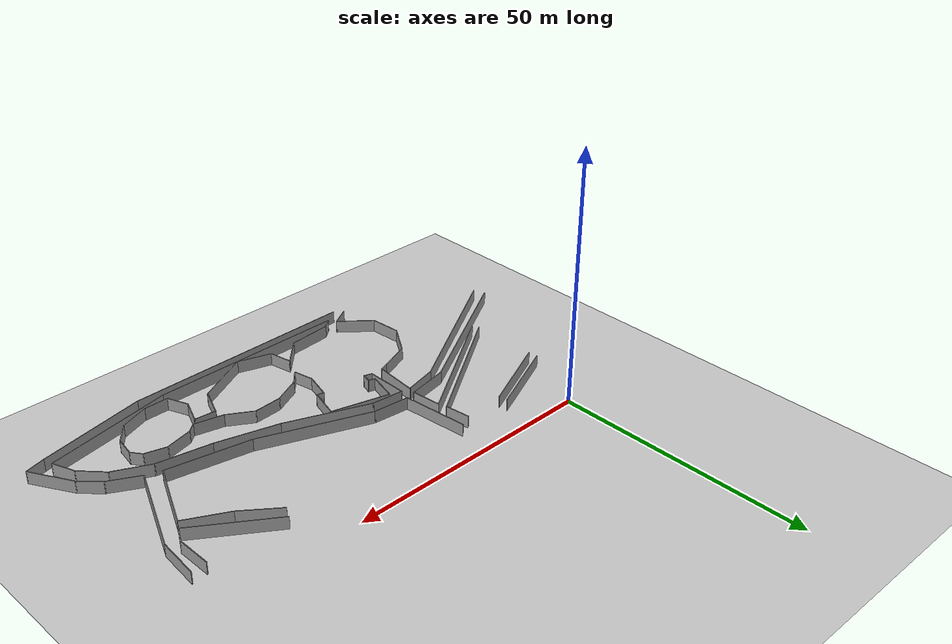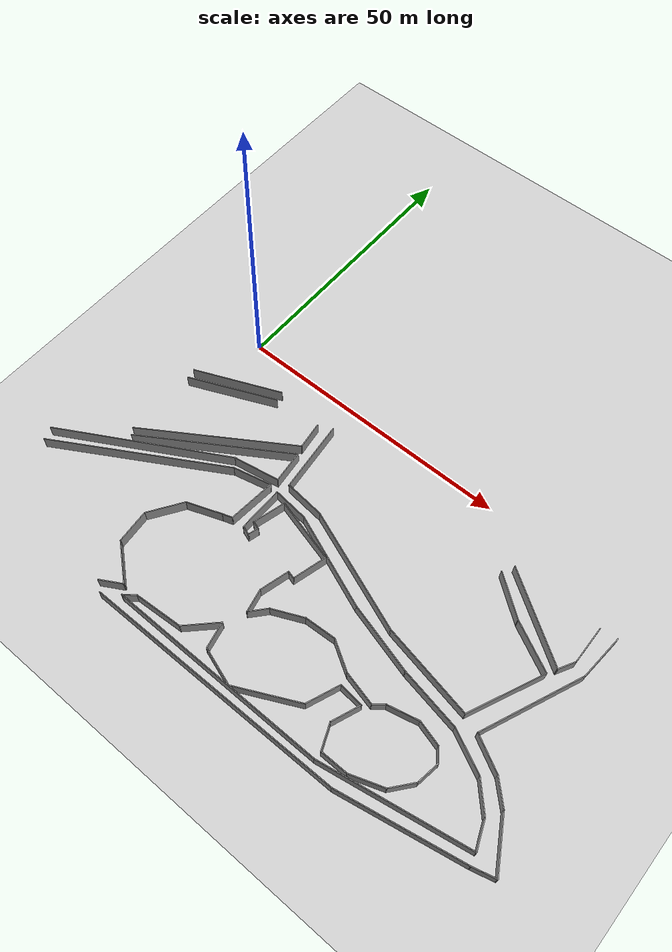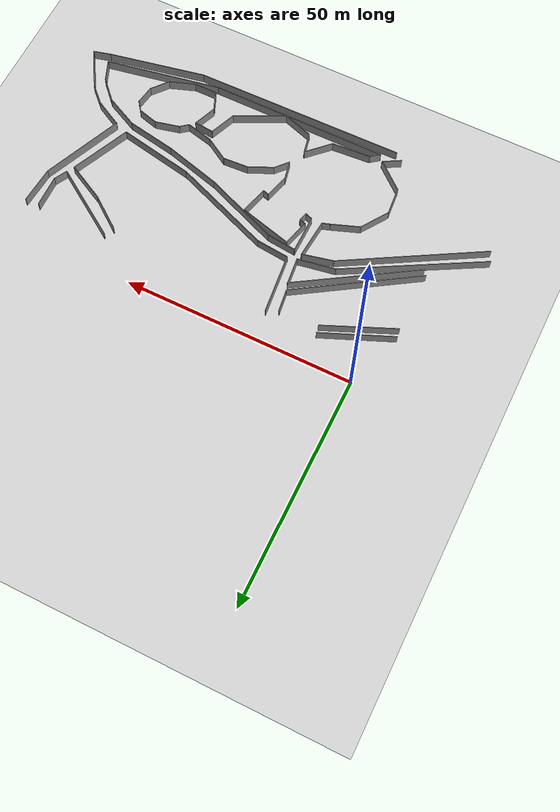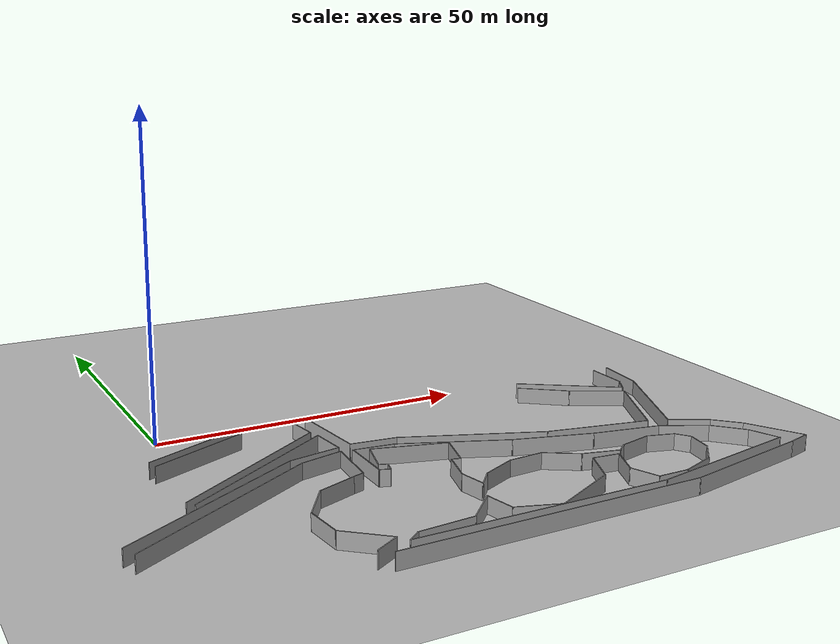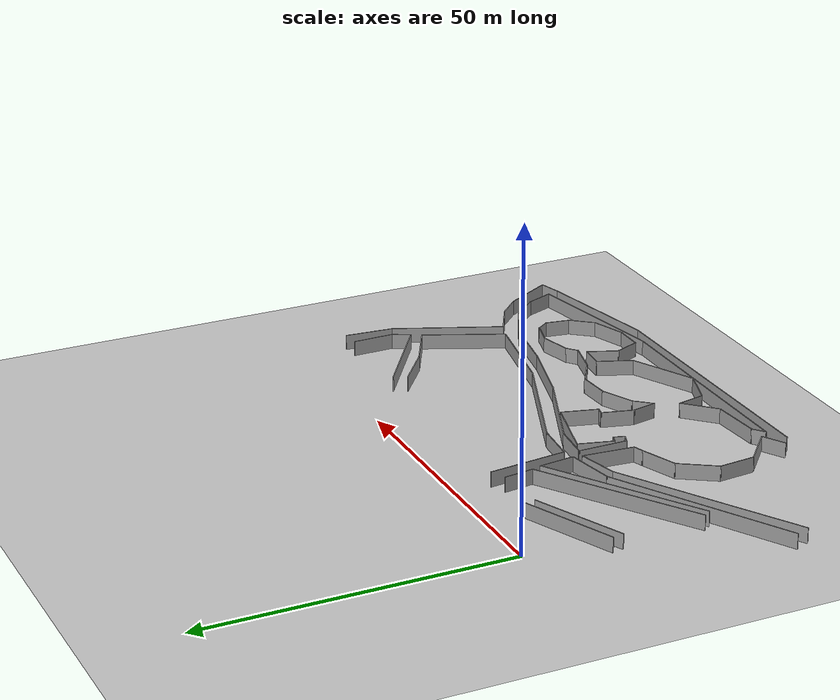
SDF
<sdf version="1.7">
 <world name="default">
  <include><uri>model://sun</uri></include>
  <include><uri>model://ground_plane</uri></include>
  <model name="final_max_v1">
   <pose>-2.52311 0.669104 0 0 -0 0</pose>
   <link name="Wall_12">
    <collision name="Wall_12_Collision">
     <geometry><box><size>4.71285 0.15 2.5</size></box></geometry>
     <pose>0 0 1.25 0 -0 0</pose>
    </collision>
    <visual name="Wall_12_Visual">
     <pose>0 0 1.25 0 -0 0</pose>
     <geometry><box><size>4.71285 0.15 2.5</size></box></geometry>
     <material>
      <script><uri>file://media/materials/scripts/gazebo.material</uri><name>Gazebo/Grey</name></script>
      <ambient>1 1 1 1</ambient>
     </material>
     <meta><layer>0</layer></meta>
    </visual>
    <pose>33.7028 -45.8078 0 0 -0 -1.36194</pose>
   </link>
   <link name="Wall_13">
    <collision name="Wall_13_Collision">
     <geometry><box><size>6.84861 0.15 2.5</size></box></geometry>
     <pose>0 0 1.25 0 -0 0</pose>
    </collision>
    <visual name="Wall_13_Visual">
     <pose>0 0 1.25 0 -0 0</pose>
     <geometry><box><size>6.84861 0.15 2.5</size></box></geometry>
     <material>
      <script><uri>file://media/materials/scripts/gazebo.material</uri><name>Gazebo/Grey</name></script>
      <ambient>1 1 1 1</ambient>
     </material>
     <meta><layer>0</layer></meta>
    </visual>
    <pose>37.3584 -49.0831 0 0 -0 -0.316824</pose>
   </link>
   <link name="Wall_131">
    <collision name="Wall_131_Collision">
     <geometry><box><size>16.551 0.15 2.5</size></box></geometry>
     <pose>0 0 1.25 0 -0 0</pose>
    </collision>
    <visual name="Wall_131_Visual">
     <pose>0 0 1.25 0 -0 0</pose>
     <geometry><box><size>16.551 0.15 2.5</size></box></geometry>
     <material>
      <script><uri>file://media/materials/scripts/gazebo.material</uri><name>Gazebo/Grey</name></script>
      <ambient>1 1 1 1</ambient>
     </material>
     <meta><layer>0</layer></meta>
    </visual>
    <pose>61.4597 -29.6539 0 0 -0 2.9497</pose>
   </link>
   <link name="Wall_132">
    <collision name="Wall_132_Collision">
     <geometry><box><size>22.4626 0.15 2.5</size></box></geometry>
     <pose>0 0 1.25 0 -0 0</pose>
    </collision>
    <visual name="Wall_132_Visual">
     <pose>0 0 1.25 0 -0 0</pose>
     <geometry><box><size>22.4626 0.15 2.5</size></box></geometry>
     <material>
      <script><uri>file://media/materials/scripts/gazebo.material</uri><name>Gazebo/Grey</name></script>
      <ambient>1 1 1 1</ambient>
     </material>
     <meta><layer>0</layer></meta>
    </visual>
    <pose>43.0137 -24.0419 0 0 -0 2.77027</pose>
   </link>
   <link name="Wall_133">
    <collision name="Wall_133_Collision">
     <geometry><box><size>7.27213 0.15 2.5</size></box></geometry>
     <pose>0 0 1.25 0 -0 0</pose>
    </collision>
    <visual name="Wall_133_Visual">
     <pose>0 0 1.25 0 -0 0</pose>
     <geometry><box><size>7.27213 0.15 2.5</size></box></geometry>
     <material>
      <script><uri>file://media/materials/scripts/gazebo.material</uri><name>Gazebo/Grey</name></script>
      <ambient>1 1 1 1</ambient>
     </material>
     <meta><layer>0</layer></meta>
    </visual>
    <pose>29.0757 -19.6259 0 0 -0 3.03807</pose>
   </link>
   <link name="Wall_134">
    <collision name="Wall_134_Collision">
     <geometry><box><size>13.0122 0.15 2.5</size></box></geometry>
     <pose>0 0 1.25 0 -0 0</pose>
    </collision>
    <visual name="Wall_134_Visual">
     <pose>0 0 1.25 0 -0 0</pose>
     <geometry><box><size>13.0122 0.15 2.5</size></box></geometry>
     <material>
      <script><uri>file://media/materials/scripts/gazebo.material</uri><name>Gazebo/Grey</name></script>
      <ambient>1 1 1 1</ambient>
     </material>
     <meta><layer>0</layer></meta>
    </visual>
    <pose>24.8437 -12.8639 0 0 -0 1.67829</pose>
   </link>
   <link name="Wall_138">
    <collision name="Wall_138_Collision">
     <geometry><box><size>8.35659 0.15 2.5</size></box></geometry>
     <pose>0 0 1.25 0 -0 0</pose>
    </collision>
    <visual name="Wall_138_Visual">
     <pose>0 0 1.25 0 -0 0</pose>
     <geometry><box><size>8.35659 0.15 2.5</size></box></geometry>
     <material>
      <script><uri>file://media/materials/scripts/gazebo.material</uri><name>Gazebo/Grey</name></script>
      <ambient>1 1 1 1</ambient>
     </material>
     <meta><layer>0</layer></meta>
    </visual>
    <pose>63.9437 -11.9899 0 0 -0 -0.650227</pose>
   </link>
   <link name="Wall_139">
    <collision name="Wall_139_Collision">
     <geometry><box><size>9.07969 0.15 2.5</size></box></geometry>
     <pose>0 0 1.25 0 -0 0</pose>
    </collision>
    <visual name="Wall_139_Visual">
     <pose>0 0 1.25 0 -0 0</pose>
     <geometry><box><size>9.07969 0.15 2.5</size></box></geometry>
     <material>
      <script><uri>file://media/materials/scripts/gazebo.material</uri><name>Gazebo/Grey</name></script>
      <ambient>1 1 1 1</ambient>
     </material>
     <meta><layer>0</layer></meta>
    </visual>
    <pose>71.1657 -16.5439 0 0 -0 -0.482079</pose>
   </link>
   <link name="Wall_14">
    <collision name="Wall_14_Collision">
     <geometry><box><size>11.6765 0.15 2.5</size></box></geometry>
     <pose>0 0 1.25 0 -0 0</pose>
    </collision>
    <visual name="Wall_14_Visual">
     <pose>0 0 1.25 0 -0 0</pose>
     <geometry><box><size>11.6765 0.15 2.5</size></box></geometry>
     <material>
      <script><uri>file://media/materials/scripts/gazebo.material</uri><name>Gazebo/Grey</name></script>
      <ambient>1 1 1 1</ambient>
     </material>
     <meta><layer>0</layer></meta>
    </visual>
    <pose>45.7063 -47.5701 0 0 -0 0.459599</pose>
   </link>
   <link name="Wall_140">
    <collision name="Wall_140_Collision">
     <geometry><box><size>13.9469 0.15 2.5</size></box></geometry>
     <pose>0 0 1.25 0 -0 0</pose>
    </collision>
    <visual name="Wall_140_Visual">
     <pose>0 0 1.25 0 -0 0</pose>
     <geometry><box><size>13.9469 0.15 2.5</size></box></geometry>
     <material>
      <script><uri>file://media/materials/scripts/gazebo.material</uri><name>Gazebo/Grey</name></script>
      <ambient>1 1 1 1</ambient>
     </material>
     <meta><layer>0</layer></meta>
    </visual>
    <pose>72.3157 -24.9159 0 0 -0 -1.9897</pose>
   </link>
   <link name="Wall_15">
    <collision name="Wall_15_Collision">
     <geometry><box><size>6.09874 0.15 2.5</size></box></geometry>
     <pose>0 0 1.25 0 -0 0</pose>
    </collision>
    <visual name="Wall_15_Visual">
     <pose>0 0 1.25 0 -0 0</pose>
     <geometry><box><size>6.09874 0.15 2.5</size></box></geometry>
     <material>
      <script><uri>file://media/materials/scripts/gazebo.material</uri><name>Gazebo/Grey</name></script>
      <ambient>1 1 1 1</ambient>
     </material>
     <meta><layer>0</layer></meta>
    </visual>
    <pose>51.9671 -42.2484 0 0 -0 1.19355</pose>
   </link>
   <link name="Wall_16">
    <collision name="Wall_16_Collision">
     <geometry><box><size>4.34473 0.15 2.5</size></box></geometry>
     <pose>0 0 1.25 0 -0 0</pose>
    </collision>
    <visual name="Wall_16_Visual">
     <pose>0 0 1.25 0 -0 0</pose>
     <geometry><box><size>4.34473 0.15 2.5</size></box></geometry>
     <material>
      <script><uri>file://media/materials/scripts/gazebo.material</uri><name>Gazebo/Grey</name></script>
      <ambient>1 1 1 1</ambient>
     </material>
     <meta><layer>0</layer></meta>
    </visual>
    <pose>55.1497 -39.6918 0 0 -0 -0.099669</pose>
   </link>
   <link name="Wall_17">
    <collision name="Wall_17_Collision">
     <geometry><box><size>5.3044 0.15 2.5</size></box></geometry>
     <pose>0 0 1.25 0 -0 0</pose>
    </collision>
    <visual name="Wall_17_Visual">
     <pose>0 0 1.25 0 -0 0</pose>
     <geometry><box><size>5.3044 0.15 2.5</size></box></geometry>
     <material>
      <script><uri>file://media/materials/scripts/gazebo.material</uri><name>Gazebo/Grey</name></script>
      <ambient>1 1 1 1</ambient>
     </material>
     <meta><layer>0</layer></meta>
    </visual>
    <pose>56.2976 -42.3005 0 0 -0 -1.94378</pose>
   </link>
   <link name="Wall_18">
    <collision name="Wall_18_Collision">
     <geometry><box><size>4.54873 0.15 2.5</size></box></geometry>
     <pose>0 0 1.25 0 -0 0</pose>
    </collision>
    <visual name="Wall_18_Visual">
     <pose>0 0 1.25 0 -0 0</pose>
     <geometry><box><size>4.54873 0.15 2.5</size></box></geometry>
     <material>
      <script><uri>file://media/materials/scripts/gazebo.material</uri><name>Gazebo/Grey</name></script>
      <ambient>1 1 1 1</ambient>
     </material>
     <meta><layer>0</layer></meta>
    </visual>
    <pose>56.1932 -46.7353 0 0 -0 -1.18148</pose>
   </link>
   <link name="Wall_21">
    <collision name="Wall_21_Collision">
     <geometry><box><size>4.95 0.15 2.5</size></box></geometry>
     <pose>0 0 1.25 0 -0 0</pose>
    </collision>
    <visual name="Wall_21_Visual">
     <pose>0 0 1.25 0 -0 0</pose>
     <geometry><box><size>4.95 0.15 2.5</size></box></geometry>
     <material>
      <script><uri>file://media/materials/scripts/gazebo.material</uri><name>Gazebo/Grey</name></script>
      <ambient>1 1 1 1</ambient>
     </material>
     <meta><layer>0</layer></meta>
    </visual>
    <pose>59.428 -48.7701 0 0 -0 0</pose>
   </link>
   <link name="Wall_22">
    <collision name="Wall_22_Collision">
     <geometry><box><size>6.02507 0.15 2.5</size></box></geometry>
     <pose>0 0 1.25 0 -0 0</pose>
    </collision>
    <visual name="Wall_22_Visual">
     <pose>0 0 1.25 0 -0 0</pose>
     <geometry><box><size>6.02507 0.15 2.5</size></box></geometry>
     <material>
      <script><uri>file://media/materials/scripts/gazebo.material</uri><name>Gazebo/Grey</name></script>
      <ambient>1 1 1 1</ambient>
     </material>
     <meta><layer>0</layer></meta>
    </visual>
    <pose>64.5932 -47.7788 0 0 -0 0.344219</pose>
   </link>
   <link name="Wall_23">
    <collision name="Wall_23_Collision">
     <geometry><box><size>4.59918 0.15 2.5</size></box></geometry>
     <pose>0 0 1.25 0 -0 0</pose>
    </collision>
    <visual name="Wall_23_Visual">
     <pose>0 0 1.25 0 -0 0</pose>
     <geometry><box><size>4.59918 0.15 2.5</size></box></geometry>
     <material>
      <script><uri>file://media/materials/scripts/gazebo.material</uri><name>Gazebo/Grey</name></script>
      <ambient>1 1 1 1</ambient>
     </material>
     <meta><layer>0</layer></meta>
    </visual>
    <pose>68.7671 -45.0658 0 0 -0 0.885067</pose>
   </link>
   <link name="Wall_24">
    <collision name="Wall_24_Collision">
     <geometry><box><size>4.16434 0.15 2.5</size></box></geometry>
     <pose>0 0 1.25 0 -0 0</pose>
    </collision>
    <visual name="Wall_24_Visual">
     <pose>0 0 1.25 0 -0 0</pose>
     <geometry><box><size>4.16434 0.15 2.5</size></box></geometry>
     <material>
      <script><uri>file://media/materials/scripts/gazebo.material</uri><name>Gazebo/Grey</name></script>
      <ambient>1 1 1 1</ambient>
     </material>
     <meta><layer>0</layer></meta>
    </visual>
    <pose>70.4889 -41.3614 0 0 -0 1.41419</pose>
   </link>
   <link name="Wall_25">
    <collision name="Wall_25_Collision">
     <geometry><box><size>2.6127 0.15 2.5</size></box></geometry>
     <pose>0 0 1.25 0 -0 0</pose>
    </collision>
    <visual name="Wall_25_Visual">
     <pose>0 0 1.25 0 -0 0</pose>
     <geometry><box><size>2.6127 0.15 2.5</size></box></geometry>
     <material>
      <script><uri>file://media/materials/scripts/gazebo.material</uri><name>Gazebo/Grey</name></script>
      <ambient>1 1 1 1</ambient>
     </material>
     <meta><layer>0</layer></meta>
    </visual>
    <pose>70.0715 -38.3875 0 0 -0 2.20582</pose>
   </link>
   <link name="Wall_26">
    <collision name="Wall_26_Collision">
     <geometry><box><size>4.47886 0.15 2.5</size></box></geometry>
     <pose>0 0 1.25 0 -0 0</pose>
    </collision>
    <visual name="Wall_26_Visual">
     <pose>0 0 1.25 0 -0 0</pose>
     <geometry><box><size>4.47886 0.15 2.5</size></box></geometry>
     <material>
      <script><uri>file://media/materials/scripts/gazebo.material</uri><name>Gazebo/Grey</name></script>
      <ambient>1 1 1 1</ambient>
     </material>
     <meta><layer>0</layer></meta>
    </visual>
    <pose>67.2541 -36.8223 0 0 -0 2.87323</pose>
   </link>
   <link name="Wall_27">
    <collision name="Wall_27_Collision">
     <geometry><box><size>5.51555 0.15 2.5</size></box></geometry>
     <pose>0 0 1.25 0 -0 0</pose>
    </collision>
    <visual name="Wall_27_Visual">
     <pose>0 0 1.25 0 -0 0</pose>
     <geometry><box><size>5.51555 0.15 2.5</size></box></geometry>
     <material>
      <script><uri>file://media/materials/scripts/gazebo.material</uri><name>Gazebo/Grey</name></script>
      <ambient>1 1 1 1</ambient>
     </material>
     <meta><layer>0</layer></meta>
    </visual>
    <pose>62.5584 -36.8745 0 0 -0 -2.90605</pose>
   </link>
   <link name="Wall_28">
    <collision name="Wall_28_Collision">
     <geometry><box><size>2.30119 0.15 2.5</size></box></geometry>
     <pose>0 0 1.25 0 -0 0</pose>
    </collision>
    <visual name="Wall_28_Visual">
     <pose>0 0 1.25 0 -0 0</pose>
     <geometry><box><size>2.30119 0.15 2.5</size></box></geometry>
     <material>
      <script><uri>file://media/materials/scripts/gazebo.material</uri><name>Gazebo/Grey</name></script>
      <ambient>1 1 1 1</ambient>
     </material>
     <meta><layer>0</layer></meta>
    </visual>
    <pose>59.1149 -38.1788 0 0 -0 -2.45928</pose>
   </link>
   <link name="Wall_29">
    <collision name="Wall_29_Collision">
     <geometry><box><size>5.94577 0.15 2.5</size></box></geometry>
     <pose>0 0 1.25 0 -0 0</pose>
    </collision>
    <visual name="Wall_29_Visual">
     <pose>0 0 1.25 0 -0 0</pose>
     <geometry><box><size>5.94577 0.15 2.5</size></box></geometry>
     <material>
      <script><uri>file://media/materials/scripts/gazebo.material</uri><name>Gazebo/Grey</name></script>
      <ambient>1 1 1 1</ambient>
     </material>
     <meta><layer>0</layer></meta>
    </visual>
    <pose>55.4628 -38.1788 0 0 -0 2.90535</pose>
   </link>
   <link name="Wall_302">
    <collision name="Wall_302_Collision">
     <geometry><box><size>17.3014 0.15 2.5</size></box></geometry>
     <pose>0 0 1.25 0 -0 0</pose>
    </collision>
    <visual name="Wall_302_Visual">
     <pose>0 0 1.25 0 -0 0</pose>
     <geometry><box><size>17.3014 0.15 2.5</size></box></geometry>
     <material>
      <script><uri>file://media/materials/scripts/gazebo.material</uri><name>Gazebo/Grey</name></script>
      <ambient>1 1 1 1</ambient>
     </material>
     <meta><layer>0</layer></meta>
    </visual>
    <pose>68.8817 -12.2483 0 0 -0 -0.59024</pose>
   </link>
   <link name="Wall_303">
    <collision name="Wall_303_Collision">
     <geometry><box><size>3.26378 0.15 2.5</size></box></geometry>
     <pose>0 0 1.25 0 -0 0</pose>
    </collision>
    <visual name="Wall_303_Visual">
     <pose>0 0 1.25 0 -0 0</pose>
     <geometry><box><size>3.26378 0.15 2.5</size></box></geometry>
     <material>
      <script><uri>file://media/materials/scripts/gazebo.material</uri><name>Gazebo/Grey</name></script>
      <ambient>1 1 1 1</ambient>
     </material>
     <meta><layer>0</layer></meta>
    </visual>
    <pose>76.7485 -15.6525 0 0 -0 1.07401</pose>
   </link>
   <link name="Wall_304">
    <collision name="Wall_304_Collision">
     <geometry><box><size>6.84577 0.15 2.5</size></box></geometry>
     <pose>0 0 1.25 0 -0 0</pose>
    </collision>
    <visual name="Wall_304_Visual">
     <pose>0 0 1.25 0 -0 0</pose>
     <geometry><box><size>6.84577 0.15 2.5</size></box></geometry>
     <material>
      <script><uri>file://media/materials/scripts/gazebo.material</uri><name>Gazebo/Grey</name></script>
      <ambient>1 1 1 1</ambient>
     </material>
     <meta><layer>0</layer></meta>
    </visual>
    <pose>77.4382 -10.9364 0 0 -0 1.58642</pose>
   </link>
   <link name="Wall_31">
    <collision name="Wall_31_Collision">
     <geometry><box><size>5.7693 0.15 2.5</size></box></geometry>
     <pose>0 0 1.25 0 -0 0</pose>
    </collision>
    <visual name="Wall_31_Visual">
     <pose>0 0 1.25 0 -0 0</pose>
     <geometry><box><size>5.7693 0.15 2.5</size></box></geometry>
     <material>
      <script><uri>file://media/materials/scripts/gazebo.material</uri><name>Gazebo/Grey</name></script>
      <ambient>1 1 1 1</ambient>
     </material>
     <meta><layer>0</layer></meta>
    </visual>
    <pose>50.2454 -36.0397 0 0 -0 2.5948</pose>
   </link>
   <link name="Wall_32">
    <collision name="Wall_32_Collision">
     <geometry><box><size>5.58511 0.15 2.5</size></box></geometry>
     <pose>0 0 1.25 0 -0 0</pose>
    </collision>
    <visual name="Wall_32_Visual">
     <pose>0 0 1.25 0 -0 0</pose>
     <geometry><box><size>5.58511 0.15 2.5</size></box></geometry>
     <material>
      <script><uri>file://media/materials/scripts/gazebo.material</uri><name>Gazebo/Grey</name></script>
      <ambient>1 1 1 1</ambient>
     </material>
     <meta><layer>0</layer></meta>
    </visual>
    <pose>45.1323 -34.7353 0 0 -0 -3.08396</pose>
   </link>
   <link name="Wall_33">
    <collision name="Wall_33_Collision">
     <geometry><box><size>5.89292 0.15 2.5</size></box></geometry>
     <pose>0 0 1.25 0 -0 0</pose>
    </collision>
    <visual name="Wall_33_Visual">
     <pose>0 0 1.25 0 -0 0</pose>
     <geometry><box><size>5.89292 0.15 2.5</size></box></geometry>
     <material>
      <script><uri>file://media/materials/scripts/gazebo.material</uri><name>Gazebo/Grey</name></script>
      <ambient>1 1 1 1</ambient>
     </material>
     <meta><layer>0</layer></meta>
    </visual>
    <pose>39.8106 -36.0918 0 0 -0 -2.71045</pose>
   </link>
   <link name="Wall_34">
    <collision name="Wall_34_Collision">
     <geometry><box><size>3.62495 0.15 2.5</size></box></geometry>
     <pose>0 0 1.25 0 -0 0</pose>
    </collision>
    <visual name="Wall_34_Visual">
     <pose>0 0 1.25 0 -0 0</pose>
     <geometry><box><size>3.62495 0.15 2.5</size></box></geometry>
     <material>
      <script><uri>file://media/materials/scripts/gazebo.material</uri><name>Gazebo/Grey</name></script>
      <ambient>1 1 1 1</ambient>
     </material>
     <meta><layer>0</layer></meta>
    </visual>
    <pose>36.0541 -38.5962 0 0 -0 -2.29245</pose>
   </link>
   <link name="Wall_35">
    <collision name="Wall_35_Collision">
     <geometry><box><size>4.20214 0.15 2.5</size></box></geometry>
     <pose>0 0 1.25 0 -0 0</pose>
    </collision>
    <visual name="Wall_35_Visual">
     <pose>0 0 1.25 0 -0 0</pose>
     <geometry><box><size>4.20214 0.15 2.5</size></box></geometry>
     <material>
      <script><uri>file://media/materials/scripts/gazebo.material</uri><name>Gazebo/Grey</name></script>
      <ambient>1 1 1 1</ambient>
     </material>
     <meta><layer>0</layer></meta>
    </visual>
    <pose>34.4889 -37.9179 0 0 -0 1.77829</pose>
   </link>
   <link name="Wall_36">
    <collision name="Wall_36_Collision">
     <geometry><box><size>5.43993 0.15 2.5</size></box></geometry>
     <pose>0 0 1.25 0 -0 0</pose>
    </collision>
    <visual name="Wall_36_Visual">
     <pose>0 0 1.25 0 -0 0</pose>
     <geometry><box><size>5.43993 0.15 2.5</size></box></geometry>
     <material>
      <script><uri>file://media/materials/scripts/gazebo.material</uri><name>Gazebo/Grey</name></script>
      <ambient>1 1 1 1</ambient>
     </material>
     <meta><layer>0</layer></meta>
    </visual>
    <pose>34.7497 -33.3788 0 0 -0 1.31147</pose>
   </link>
   <link name="Wall_37">
    <collision name="Wall_37_Collision">
     <geometry><box><size>1.5 0.15 2.5</size></box></geometry>
     <pose>0 0 1.25 0 -0 0</pose>
    </collision>
    <visual name="Wall_37_Visual">
     <pose>0 0 1.25 0 -0 0</pose>
     <geometry><box><size>1.5 0.15 2.5</size></box></geometry>
     <material>
      <script><uri>file://media/materials/scripts/gazebo.material</uri><name>Gazebo/Grey</name></script>
      <ambient>1 1 1 1</ambient>
     </material>
     <meta><layer>0</layer></meta>
    </visual>
    <pose>36.08 -30.997 0 0 -0 -0.261799</pose>
   </link>
   <link name="Wall_38">
    <collision name="Wall_38_Collision">
     <geometry><box><size>6.25 0.15 2.5</size></box></geometry>
     <pose>0 0 1.25 0 -0 0</pose>
    </collision>
    <visual name="Wall_38_Visual">
     <pose>0 0 1.25 0 -0 0</pose>
     <geometry><box><size>6.25 0.15 2.5</size></box></geometry>
     <material>
      <script><uri>file://media/materials/scripts/gazebo.material</uri><name>Gazebo/Grey</name></script>
      <ambient>1 1 1 1</ambient>
     </material>
     <meta><layer>0</layer></meta>
    </visual>
    <pose>37.5214 -28.2256 0 0 -0 1.309</pose>
   </link>
   <link name="Wall_39">
    <collision name="Wall_39_Collision">
     <geometry><box><size>11.75 0.15 2.5</size></box></geometry>
     <pose>0 0 1.25 0 -0 0</pose>
    </collision>
    <visual name="Wall_39_Visual">
     <pose>0 0 1.25 0 -0 0</pose>
     <geometry><box><size>11.75 0.15 2.5</size></box></geometry>
     <material>
      <script><uri>file://media/materials/scripts/gazebo.material</uri><name>Gazebo/Grey</name></script>
      <ambient>1 1 1 1</ambient>
     </material>
     <meta><layer>0</layer></meta>
    </visual>
    <pose>32.7084 -23.7784 0 0 -0 2.87979</pose>
   </link>
   <link name="Wall_40">
    <collision name="Wall_40_Collision">
     <geometry><box><size>6 0.15 2.5</size></box></geometry>
     <pose>0 0 1.25 0 -0 0</pose>
    </collision>
    <visual name="Wall_40_Visual">
     <pose>0 0 1.25 0 -0 0</pose>
     <geometry><box><size>6 0.15 2.5</size></box></geometry>
     <material>
      <script><uri>file://media/materials/scripts/gazebo.material</uri><name>Gazebo/Grey</name></script>
      <ambient>1 1 1 1</ambient>
     </material>
     <meta><layer>0</layer></meta>
    </visual>
    <pose>26.349 -25.1026 0 0 -0 -1.8326</pose>
   </link>
   <link name="Wall_41">
    <collision name="Wall_41_Collision">
     <geometry><box><size>1.48764 0.15 2.5</size></box></geometry>
     <pose>0 0 1.25 0 -0 0</pose>
    </collision>
    <visual name="Wall_41_Visual">
     <pose>0 0 1.25 0 -0 0</pose>
     <geometry><box><size>1.48764 0.15 2.5</size></box></geometry>
     <material>
      <script><uri>file://media/materials/scripts/gazebo.material</uri><name>Gazebo/Grey</name></script>
      <ambient>1 1 1 1</ambient>
     </material>
     <meta><layer>0</layer></meta>
    </visual>
    <pose>26.2317 -28.1229 0 0 -0 -0.295878</pose>
   </link>
   <link name="Wall_42">
    <collision name="Wall_42_Collision">
     <geometry><box><size>2 0.15 2.5</size></box></geometry>
     <pose>0 0 1.25 0 -0 0</pose>
    </collision>
    <visual name="Wall_42_Visual">
     <pose>0 0 1.25 0 -0 0</pose>
     <geometry><box><size>2 0.15 2.5</size></box></geometry>
     <material>
      <script><uri>file://media/materials/scripts/gazebo.material</uri><name>Gazebo/Grey</name></script>
      <ambient>1 1 1 1</ambient>
     </material>
     <meta><layer>0</layer></meta>
    </visual>
    <pose>26.6321 -29.2114 0 0 -0 -1.8326</pose>
   </link>
   <link name="Wall_43">
    <collision name="Wall_43_Collision">
     <geometry><box><size>1.74606 0.15 2.5</size></box></geometry>
     <pose>0 0 1.25 0 -0 0</pose>
    </collision>
    <visual name="Wall_43_Visual">
     <pose>0 0 1.25 0 -0 0</pose>
     <geometry><box><size>1.74606 0.15 2.5</size></box></geometry>
     <material>
      <script><uri>file://media/materials/scripts/gazebo.material</uri><name>Gazebo/Grey</name></script>
      <ambient>1 1 1 1</ambient>
     </material>
     <meta><layer>0</layer></meta>
    </visual>
    <pose>25.6408 -29.8375 0 0 -0 2.79991</pose>
   </link>
   <link name="Wall_44">
    <collision name="Wall_44_Collision">
     <geometry><box><size>8.25 0.15 2.5</size></box></geometry>
     <pose>0 0 1.25 0 -0 0</pose>
    </collision>
    <visual name="Wall_44_Visual">
     <pose>0 0 1.25 0 -0 0</pose>
     <geometry><box><size>8.25 0.15 2.5</size></box></geometry>
     <material>
      <script><uri>file://media/materials/scripts/gazebo.material</uri><name>Gazebo/Grey</name></script>
      <ambient>1 1 1 1</ambient>
     </material>
     <meta><layer>0</layer></meta>
    </visual>
    <pose>24.8889 -25.5201 0 0 -0 1.5708</pose>
   </link>
   <link name="Wall_45">
    <collision name="Wall_45_Collision">
     <geometry><box><size>6.45508 0.15 2.5</size></box></geometry>
     <pose>0 0 1.25 0 -0 0</pose>
    </collision>
    <visual name="Wall_45_Visual">
     <pose>0 0 1.25 0 -0 0</pose>
     <geometry><box><size>6.45508 0.15 2.5</size></box></geometry>
     <material>
      <script><uri>file://media/materials/scripts/gazebo.material</uri><name>Gazebo/Grey</name></script>
      <ambient>1 1 1 1</ambient>
     </material>
     <meta><layer>0</layer></meta>
    </visual>
    <pose>28.0239 -21.8018 0 0 -0 -0.105418</pose>
   </link>
   <link name="Wall_46">
    <collision name="Wall_46_Collision">
     <geometry><box><size>17.2425 0.15 2.5</size></box></geometry>
     <pose>0 0 1.25 0 -0 0</pose>
    </collision>
    <visual name="Wall_46_Visual">
     <pose>0 0 1.25 0 -0 0</pose>
     <geometry><box><size>17.2425 0.15 2.5</size></box></geometry>
     <material>
      <script><uri>file://media/materials/scripts/gazebo.material</uri><name>Gazebo/Grey</name></script>
      <ambient>1 1 1 1</ambient>
     </material>
     <meta><layer>0</layer></meta>
    </visual>
    <pose>39.0939 -25.3075 0 0 -0 -0.380506</pose>
   </link>
   <link name="Wall_47">
    <collision name="Wall_47_Collision">
     <geometry><box><size>12.6045 0.15 2.5</size></box></geometry>
     <pose>0 0 1.25 0 -0 0</pose>
    </collision>
    <visual name="Wall_47_Visual">
     <pose>0 0 1.25 0 -0 0</pose>
     <geometry><box><size>12.6045 0.15 2.5</size></box></geometry>
     <material>
      <script><uri>file://media/materials/scripts/gazebo.material</uri><name>Gazebo/Grey</name></script>
      <ambient>1 1 1 1</ambient>
     </material>
     <meta><layer>0</layer></meta>
    </visual>
    <pose>53.0319 -30.1375 0 0 -0 -0.269167</pose>
   </link>
   <link name="Wall_48">
    <collision name="Wall_48_Collision">
     <geometry><box><size>10.8145 0.15 2.5</size></box></geometry>
     <pose>0 0 1.25 0 -0 0</pose>
    </collision>
    <visual name="Wall_48_Visual">
     <pose>0 0 1.25 0 -0 0</pose>
     <geometry><box><size>10.8145 0.15 2.5</size></box></geometry>
     <material>
      <script><uri>file://media/materials/scripts/gazebo.material</uri><name>Gazebo/Grey</name></script>
      <ambient>1 1 1 1</ambient>
     </material>
     <meta><layer>0</layer></meta>
    </visual>
    <pose>64.2789 -32.7595 0 0 -0 -0.182168</pose>
   </link>
   <link name="Wall_49">
    <collision name="Wall_49_Collision">
     <geometry><box><size>7.67954 0.15 2.5</size></box></geometry>
     <pose>0 0 1.25 0 -0 0</pose>
    </collision>
    <visual name="Wall_49_Visual">
     <pose>0 0 1.25 0 -0 0</pose>
     <geometry><box><size>7.67954 0.15 2.5</size></box></geometry>
     <material>
      <script><uri>file://media/materials/scripts/gazebo.material</uri><name>Gazebo/Grey</name></script>
      <ambient>1 1 1 1</ambient>
     </material>
     <meta><layer>0</layer></meta>
    </visual>
    <pose>72.9039 -35.3815 0 0 -0 -0.455451</pose>
   </link>
   <link name="Wall_498">
    <collision name="Wall_498_Collision">
     <geometry><box><size>28.1608 0.15 2.5</size></box></geometry>
     <pose>0 0 1.25 0 -0 0</pose>
    </collision>
    <visual name="Wall_498_Visual">
     <pose>0 0 1.25 0 -0 0</pose>
     <geometry><box><size>28.1608 0.15 2.5</size></box></geometry>
     <material>
      <script><uri>file://media/materials/scripts/gazebo.material</uri><name>Gazebo/Grey</name></script>
      <ambient>1 1 1 1</ambient>
     </material>
     <meta><layer>0</layer></meta>
    </visual>
    <pose>11.0228 -21.4678 0 0 -0 0.566245</pose>
   </link>
   <link name="Wall_50">
    <collision name="Wall_50_Collision">
     <geometry><box><size>5.81305 0.15 2.5</size></box></geometry>
     <pose>0 0 1.25 0 -0 0</pose>
    </collision>
    <visual name="Wall_50_Visual">
     <pose>0 0 1.25 0 -0 0</pose>
     <geometry><box><size>5.81305 0.15 2.5</size></box></geometry>
     <material>
      <script><uri>file://media/materials/scripts/gazebo.material</uri><name>Gazebo/Grey</name></script>
      <ambient>1 1 1 1</ambient>
     </material>
     <meta><layer>0</layer></meta>
    </visual>
    <pose>78.2169 -39.1075 0 0 -0 -0.819867</pose>
   </link>
   <link name="Wall_503">
    <collision name="Wall_503_Collision">
     <geometry><box><size>31.8278 0.15 2.5</size></box></geometry>
     <pose>0 0 1.25 0 -0 0</pose>
    </collision>
    <visual name="Wall_503_Visual">
     <pose>0 0 1.25 0 -0 0</pose>
     <geometry><box><size>31.8278 0.15 2.5</size></box></geometry>
     <material>
      <script><uri>file://media/materials/scripts/gazebo.material</uri><name>Gazebo/Grey</name></script>
      <ambient>1 1 1 1</ambient>
     </material>
     <meta><layer>0</layer></meta>
    </visual>
    <pose>1.59172 -28.9196 0 0 -0 0.51392</pose>
   </link>
   <link name="Wall_505">
    <collision name="Wall_505_Collision">
     <geometry><box><size>8.37199 0.15 2.5</size></box></geometry>
     <pose>0 0 1.25 0 -0 0</pose>
    </collision>
    <visual name="Wall_505_Visual">
     <pose>0 0 1.25 0 -0 0</pose>
     <geometry><box><size>8.37199 0.15 2.5</size></box></geometry>
     <material>
      <script><uri>file://media/materials/scripts/gazebo.material</uri><name>Gazebo/Grey</name></script>
      <ambient>1 1 1 1</ambient>
     </material>
     <meta><layer>0</layer></meta>
    </visual>
    <pose>19.4335 -20.4214 0 0 -0 0.174045</pose>
   </link>
   <link name="Wall_506">
    <collision name="Wall_506_Collision">
     <geometry><box><size>5.94059 0.15 2.5</size></box></geometry>
     <pose>0 0 1.25 0 -0 0</pose>
    </collision>
    <visual name="Wall_506_Visual">
     <pose>0 0 1.25 0 -0 0</pose>
     <geometry><box><size>5.94059 0.15 2.5</size></box></geometry>
     <material>
      <script><uri>file://media/materials/scripts/gazebo.material</uri><name>Gazebo/Grey</name></script>
      <ambient>1 1 1 1</ambient>
     </material>
     <meta><layer>0</layer></meta>
    </visual>
    <pose>23.1623 -16.832 0 0 -0 1.68157</pose>
   </link>
   <link name="Wall_53">
    <collision name="Wall_53_Collision">
     <geometry><box><size>46.0835 0.15 2.5</size></box></geometry>
     <pose>0 0 1.25 0 -0 0</pose>
    </collision>
    <visual name="Wall_53_Visual">
     <pose>0 0 1.25 0 -0 0</pose>
     <geometry><box><size>46.0835 0.15 2.5</size></box></geometry>
     <material>
      <script><uri>file://media/materials/scripts/gazebo.material</uri><name>Gazebo/Grey</name></script>
      <ambient>1 1 1 1</ambient>
     </material>
     <meta><layer>0</layer></meta>
    </visual>
    <pose>38.4766 -51.8722 0 0 -0 0.008638</pose>
   </link>
   <link name="Wall_534">
    <collision name="Wall_534_Collision">
     <geometry><box><size>28.6684 0.15 2.5</size></box></geometry>
     <pose>0 0 1.25 0 -0 0</pose>
    </collision>
    <visual name="Wall_534_Visual">
     <pose>0 0 1.25 0 -0 0</pose>
     <geometry><box><size>28.6684 0.15 2.5</size></box></geometry>
     <material>
      <script><uri>file://media/materials/scripts/gazebo.material</uri><name>Gazebo/Grey</name></script>
      <ambient>1 1 1 1</ambient>
     </material>
     <meta><layer>0</layer></meta>
    </visual>
    <pose>10.3666 -20.1085 0 0 -0 0.573606</pose>
   </link>
   <link name="Wall_54">
    <collision name="Wall_54_Collision">
     <geometry><box><size>21.4718 0.15 2.5</size></box></geometry>
     <pose>0 0 1.25 0 -0 0</pose>
    </collision>
    <visual name="Wall_54_Visual">
     <pose>0 0 1.25 0 -0 0</pose>
     <geometry><box><size>21.4718 0.15 2.5</size></box></geometry>
     <material>
      <script><uri>file://media/materials/scripts/gazebo.material</uri><name>Gazebo/Grey</name></script>
      <ambient>1 1 1 1</ambient>
     </material>
     <meta><layer>0</layer></meta>
    </visual>
    <pose>71.8997 -49.5997 0 0 -0 0.195805</pose>
   </link>
   <link name="Wall_541">
    <collision name="Wall_541_Collision">
     <geometry><box><size>16.2514 0.15 2.5</size></box></geometry>
     <pose>0 0 1.25 0 -0 0</pose>
    </collision>
    <visual name="Wall_541_Visual">
     <pose>0 0 1.25 0 -0 0</pose>
     <geometry><box><size>16.2514 0.15 2.5</size></box></geometry>
     <material>
      <script><uri>file://media/materials/scripts/gazebo.material</uri><name>Gazebo/Grey</name></script>
      <ambient>1 1 1 1</ambient>
     </material>
     <meta><layer>0</layer></meta>
    </visual>
    <pose>5.77658 -11.3512 0 0 -0 0.409246</pose>
   </link>
   <link name="Wall_543">
    <collision name="Wall_543_Collision">
     <geometry><box><size>4.94946 0.15 2.5</size></box></geometry>
     <pose>0 0 1.25 0 -0 0</pose>
    </collision>
    <visual name="Wall_543_Visual">
     <pose>0 0 1.25 0 -0 0</pose>
     <geometry><box><size>4.94946 0.15 2.5</size></box></geometry>
     <material>
      <script><uri>file://media/materials/scripts/gazebo.material</uri><name>Gazebo/Grey</name></script>
      <ambient>1 1 1 1</ambient>
     </material>
     <meta><layer>0</layer></meta>
    </visual>
    <pose>22.0244 -9.99213 0 0 -0 -1.43738</pose>
   </link>
   <link name="Wall_548">
    <collision name="Wall_548_Collision">
     <geometry><box><size>16.1594 0.15 2.5</size></box></geometry>
     <pose>0 0 1.25 0 -0 0</pose>
    </collision>
    <visual name="Wall_548_Visual">
     <pose>0 0 1.25 0 -0 0</pose>
     <geometry><box><size>16.1594 0.15 2.5</size></box></geometry>
     <material>
      <script><uri>file://media/materials/scripts/gazebo.material</uri><name>Gazebo/Grey</name></script>
      <ambient>1 1 1 1</ambient>
     </material>
     <meta><layer>0</layer></meta>
    </visual>
    <pose>5.46057 -9.63071 0 0 -0 0.401581</pose>
   </link>
   <link name="Wall_56">
    <collision name="Wall_56_Collision">
     <geometry><box><size>2.49338 0.15 2.5</size></box></geometry>
     <pose>0 0 1.25 0 -0 0</pose>
    </collision>
    <visual name="Wall_56_Visual">
     <pose>0 0 1.25 0 -0 0</pose>
     <geometry><box><size>2.49338 0.15 2.5</size></box></geometry>
     <material>
      <script><uri>file://media/materials/scripts/gazebo.material</uri><name>Gazebo/Grey</name></script>
      <ambient>1 1 1 1</ambient>
     </material>
     <meta><layer>0</layer></meta>
    </visual>
    <pose>19.35 -49.4619 0 0 -0 0.668129</pose>
   </link>
   <link name="Wall_58">
    <collision name="Wall_58_Collision">
     <geometry><box><size>38.75 0.15 2.5</size></box></geometry>
     <pose>0 0 1.25 0 -0 0</pose>
    </collision>
    <visual name="Wall_58_Visual">
     <pose>0 0 1.25 0 -0 0</pose>
     <geometry><box><size>38.75 0.15 2.5</size></box></geometry>
     <material>
      <script><uri>file://media/materials/scripts/gazebo.material</uri><name>Gazebo/Grey</name></script>
      <ambient>1 1 1 1</ambient>
     </material>
     <meta><layer>0</layer></meta>
    </visual>
    <pose>37.7303 -50.1877 0 0 -0 0</pose>
   </link>
   <link name="Wall_60">
    <collision name="Wall_60_Collision">
     <geometry><box><size>25.436 0.15 2.5</size></box></geometry>
     <pose>0 0 1.25 0 -0 0</pose>
    </collision>
    <visual name="Wall_60_Visual">
     <pose>0 0 1.25 0 -0 0</pose>
     <geometry><box><size>25.436 0.15 2.5</size></box></geometry>
     <material>
      <script><uri>file://media/materials/scripts/gazebo.material</uri><name>Gazebo/Grey</name></script>
      <ambient>1 1 1 1</ambient>
     </material>
     <meta><layer>0</layer></meta>
    </visual>
    <pose>69.4626 -47.8893 0 0 -0 0.182813</pose>
   </link>
   <link name="Wall_62">
    <collision name="Wall_62_Collision">
     <geometry><box><size>4.8961 0.15 2.5</size></box></geometry>
     <pose>0 0 1.25 0 -0 0</pose>
    </collision>
    <visual name="Wall_62_Visual">
     <pose>0 0 1.25 0 -0 0</pose>
     <geometry><box><size>4.8961 0.15 2.5</size></box></geometry>
     <material>
      <script><uri>file://media/materials/scripts/gazebo.material</uri><name>Gazebo/Grey</name></script>
      <ambient>1 1 1 1</ambient>
     </material>
     <meta><layer>0</layer></meta>
    </visual>
    <pose>81.0219 -43.3842 0 0 -0 1.94751</pose>
   </link>
   <link name="Wall_65">
    <collision name="Wall_65_Collision">
     <geometry><box><size>4 0.15 2.5</size></box></geometry>
     <pose>0 0 1.25 0 -0 0</pose>
    </collision>
    <visual name="Wall_65_Visual">
     <pose>0 0 1.25 0 -0 0</pose>
     <geometry><box><size>4 0.15 2.5</size></box></geometry>
     <material>
      <script><uri>file://media/materials/scripts/gazebo.material</uri><name>Gazebo/Grey</name></script>
      <ambient>1 1 1 1</ambient>
     </material>
     <meta><layer>0</layer></meta>
    </visual>
    <pose>84.2164 -47.0273 0 0 -0 0.261799</pose>
   </link>
   <link name="Wall_66">
    <collision name="Wall_66_Collision">
     <geometry><box><size>9.25 0.15 2.5</size></box></geometry>
     <pose>0 0 1.25 0 -0 0</pose>
    </collision>
    <visual name="Wall_66_Visual">
     <pose>0 0 1.25 0 -0 0</pose>
     <geometry><box><size>9.25 0.15 2.5</size></box></geometry>
     <material>
      <script><uri>file://media/materials/scripts/gazebo.material</uri><name>Gazebo/Grey</name></script>
      <ambient>1 1 1 1</ambient>
     </material>
     <meta><layer>0</layer></meta>
    </visual>
    <pose>83.8008 -42.5887 0 0 -0 2.0944</pose>
   </link>
   <link name="Wall_67">
    <collision name="Wall_67_Collision">
     <geometry><box><size>4.91456 0.15 2.5</size></box></geometry>
     <pose>0 0 1.25 0 -0 0</pose>
    </collision>
    <visual name="Wall_67_Visual">
     <pose>0 0 1.25 0 -0 0</pose>
     <geometry><box><size>4.91456 0.15 2.5</size></box></geometry>
     <material>
      <script><uri>file://media/materials/scripts/gazebo.material</uri><name>Gazebo/Grey</name></script>
      <ambient>1 1 1 1</ambient>
     </material>
     <meta><layer>0</layer></meta>
    </visual>
    <pose>79.834 -36.9709 0 0 -0 2.36047</pose>
   </link>
   <link name="Wall_68">
    <collision name="Wall_68_Collision">
     <geometry><box><size>6.57108 0.15 2.5</size></box></geometry>
     <pose>0 0 1.25 0 -0 0</pose>
    </collision>
    <visual name="Wall_68_Visual">
     <pose>0 0 1.25 0 -0 0</pose>
     <geometry><box><size>6.57108 0.15 2.5</size></box></geometry>
     <material>
      <script><uri>file://media/materials/scripts/gazebo.material</uri><name>Gazebo/Grey</name></script>
      <ambient>1 1 1 1</ambient>
     </material>
     <meta><layer>0</layer></meta>
    </visual>
    <pose>75.3133 -33.7756 0 0 -0 2.64911</pose>
   </link>
   <link name="Wall_69">
    <collision name="Wall_69_Collision">
     <geometry><box><size>18.5927 0.15 2.5</size></box></geometry>
     <pose>0 0 1.25 0 -0 0</pose>
    </collision>
    <visual name="Wall_69_Visual">
     <pose>0 0 1.25 0 -0 0</pose>
     <geometry><box><size>18.5927 0.15 2.5</size></box></geometry>
     <material>
      <script><uri>file://media/materials/scripts/gazebo.material</uri><name>Gazebo/Grey</name></script>
      <ambient>1 1 1 1</ambient>
     </material>
     <meta><layer>0</layer></meta>
    </visual>
    <pose>76.082 -23.767 0 0 -0 1.17001</pose>
   </link>
   <link name="Wall_70">
    <collision name="Wall_70_Collision">
     <geometry><box><size>8.11035 0.15 2.5</size></box></geometry>
     <pose>0 0 1.25 0 -0 0</pose>
    </collision>
    <visual name="Wall_70_Visual">
     <pose>0 0 1.25 0 -0 0</pose>
     <geometry><box><size>8.11035 0.15 2.5</size></box></geometry>
     <material>
      <script><uri>file://media/materials/scripts/gazebo.material</uri><name>Gazebo/Grey</name></script>
      <ambient>1 1 1 1</ambient>
     </material>
     <meta><layer>0</layer></meta>
    </visual>
    <pose>79.997 -11.3089 0 0 -0 1.49097</pose>
   </link>
   <link name="Wall_76">
    <collision name="Wall_76_Collision">
     <geometry><box><size>4.25 0.15 2.5</size></box></geometry>
     <pose>0 0 1.25 0 -0 0</pose>
    </collision>
    <visual name="Wall_76_Visual">
     <pose>0 0 1.25 0 -0 0</pose>
     <geometry><box><size>4.25 0.15 2.5</size></box></geometry>
     <material>
      <script><uri>file://media/materials/scripts/gazebo.material</uri><name>Gazebo/Grey</name></script>
      <ambient>1 1 1 1</ambient>
     </material>
     <meta><layer>0</layer></meta>
    </visual>
    <pose>15.5961 -49.7666 0 0 -0 0.523599</pose>
   </link>
   <link name="Wall_77">
    <collision name="Wall_77_Collision">
     <geometry><box><size>7.6073 0.15 2.5</size></box></geometry>
     <pose>0 0 1.25 0 -0 0</pose>
    </collision>
    <visual name="Wall_77_Visual">
     <pose>0 0 1.25 0 -0 0</pose>
     <geometry><box><size>7.6073 0.15 2.5</size></box></geometry>
     <material>
      <script><uri>file://media/materials/scripts/gazebo.material</uri><name>Gazebo/Grey</name></script>
      <ambient>1 1 1 1</ambient>
     </material>
     <meta><layer>0</layer></meta>
    </visual>
    <pose>14.5391 -46.3166 0 0 -0 2.43352</pose>
   </link>
   <link name="Wall_78">
    <collision name="Wall_78_Collision">
     <geometry><box><size>6.10962 0.15 2.5</size></box></geometry>
     <pose>0 0 1.25 0 -0 0</pose>
    </collision>
    <visual name="Wall_78_Visual">
     <pose>0 0 1.25 0 -0 0</pose>
     <geometry><box><size>6.10962 0.15 2.5</size></box></geometry>
     <material>
      <script><uri>file://media/materials/scripts/gazebo.material</uri><name>Gazebo/Grey</name></script>
      <ambient>1 1 1 1</ambient>
     </material>
     <meta><layer>0</layer></meta>
    </visual>
    <pose>11.4307 -40.9246 0 0 -0 1.66355</pose>
   </link>
   <link name="Wall_79">
    <collision name="Wall_79_Collision">
     <geometry><box><size>6.92466 0.15 2.5</size></box></geometry>
     <pose>0 0 1.25 0 -0 0</pose>
    </collision>
    <visual name="Wall_79_Visual">
     <pose>0 0 1.25 0 -0 0</pose>
     <geometry><box><size>6.92466 0.15 2.5</size></box></geometry>
     <material>
      <script><uri>file://media/materials/scripts/gazebo.material</uri><name>Gazebo/Grey</name></script>
      <ambient>1 1 1 1</ambient>
     </material>
     <meta><layer>0</layer></meta>
    </visual>
    <pose>13.0177 -35.1286 0 0 -0 0.988443</pose>
   </link>
   <link name="Wall_8">
    <collision name="Wall_8_Collision">
     <geometry><box><size>8.5714 0.15 2.5</size></box></geometry>
     <pose>0 0 1.25 0 -0 0</pose>
    </collision>
    <visual name="Wall_8_Visual">
     <pose>0 0 1.25 0 -0 0</pose>
     <geometry><box><size>8.5714 0.15 2.5</size></box></geometry>
     <material>
      <script><uri>file://media/materials/scripts/gazebo.material</uri><name>Gazebo/Grey</name></script>
      <ambient>1 1 1 1</ambient>
     </material>
     <meta><layer>0</layer></meta>
    </visual>
    <pose>24.4698 -48.436 0 0 -0 0.071307</pose>
   </link>
   <link name="Wall_80">
    <collision name="Wall_80_Collision">
     <geometry><box><size>6.48148 0.15 2.5</size></box></geometry>
     <pose>0 0 1.25 0 -0 0</pose>
    </collision>
    <visual name="Wall_80_Visual">
     <pose>0 0 1.25 0 -0 0</pose>
     <geometry><box><size>6.48148 0.15 2.5</size></box></geometry>
     <material>
      <script><uri>file://media/materials/scripts/gazebo.material</uri><name>Gazebo/Grey</name></script>
      <ambient>1 1 1 1</ambient>
     </material>
     <meta><layer>0</layer></meta>
    </visual>
    <pose>17.8477 -31.1956 0 0 -0 0.35622</pose>
   </link>
   <link name="Wall_81">
    <collision name="Wall_81_Collision">
     <geometry><box><size>1.89558 0.15 2.5</size></box></geometry>
     <pose>0 0 1.25 0 -0 0</pose>
    </collision>
    <visual name="Wall_81_Visual">
     <pose>0 0 1.25 0 -0 0</pose>
     <geometry><box><size>1.89558 0.15 2.5</size></box></geometry>
     <material>
      <script><uri>file://media/materials/scripts/gazebo.material</uri><name>Gazebo/Grey</name></script>
      <ambient>1 1 1 1</ambient>
     </material>
     <meta><layer>0</layer></meta>
    </visual>
    <pose>21.6427 -29.8156 0 0 -0 0.321751</pose>
   </link>
   <link name="Wall_82">
    <collision name="Wall_82_Collision">
     <geometry><box><size>8.59623 0.15 2.5</size></box></geometry>
     <pose>0 0 1.25 0 -0 0</pose>
    </collision>
    <visual name="Wall_82_Visual">
     <pose>0 0 1.25 0 -0 0</pose>
     <geometry><box><size>8.59623 0.15 2.5</size></box></geometry>
     <material>
      <script><uri>file://media/materials/scripts/gazebo.material</uri><name>Gazebo/Grey</name></script>
      <ambient>1 1 1 1</ambient>
     </material>
     <meta><layer>0</layer></meta>
    </visual>
    <pose>22.8157 -25.3306 0 0 -0 1.48901</pose>
   </link>
   <link name="Wall_83">
    <collision name="Wall_83_Collision">
     <geometry><box><size>6.94571 0.15 2.5</size></box></geometry>
     <pose>0 0 1.25 0 -0 0</pose>
    </collision>
    <visual name="Wall_83_Visual">
     <pose>0 0 1.25 0 -0 0</pose>
     <geometry><box><size>6.94571 0.15 2.5</size></box></geometry>
     <material>
      <script><uri>file://media/materials/scripts/gazebo.material</uri><name>Gazebo/Grey</name></script>
      <ambient>1 1 1 1</ambient>
     </material>
     <meta><layer>0</layer></meta>
    </visual>
    <pose>19.8487 -21.8806 0 0 -0 -2.91632</pose>
   </link>
   <link name="Wall_84">
    <collision name="Wall_84_Collision">
     <geometry><box><size>32.4337 0.15 2.5</size></box></geometry>
     <pose>0 0 1.25 0 -0 0</pose>
    </collision>
    <visual name="Wall_84_Visual">
     <pose>0 0 1.25 0 -0 0</pose>
     <geometry><box><size>32.4337 0.15 2.5</size></box></geometry>
     <material>
      <script><uri>file://media/materials/scripts/gazebo.material</uri><name>Gazebo/Grey</name></script>
      <ambient>1 1 1 1</ambient>
     </material>
     <meta><layer>0</layer></meta>
    </visual>
    <pose>2.59875 -30.7816 0 0 -0 -2.6129</pose>
   </link>
   <link name="Wall_9">
    <collision name="Wall_9_Collision">
     <geometry><box><size>6.59881 0.15 2.5</size></box></geometry>
     <pose>0 0 1.25 0 -0 0</pose>
    </collision>
    <visual name="Wall_9_Visual">
     <pose>0 0 1.25 0 -0 0</pose>
     <geometry><box><size>6.59881 0.15 2.5</size></box></geometry>
     <material>
      <script><uri>file://media/materials/scripts/gazebo.material</uri><name>Gazebo/Grey</name></script>
      <ambient>1 1 1 1</ambient>
     </material>
     <meta><layer>0</layer></meta>
    </visual>
    <pose>30.9498 -45.856 0 0 -0 0.785398</pose>
   </link>
   <static>1</static>
  </model>
 </world>
</sdf>
